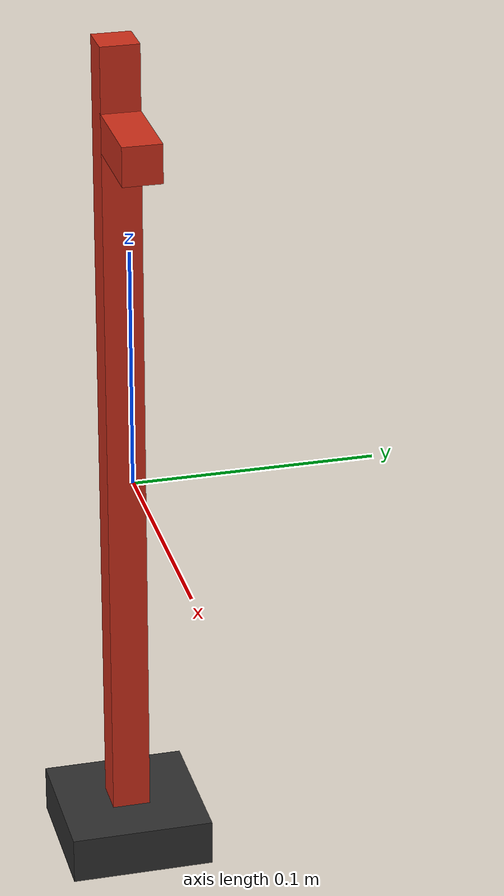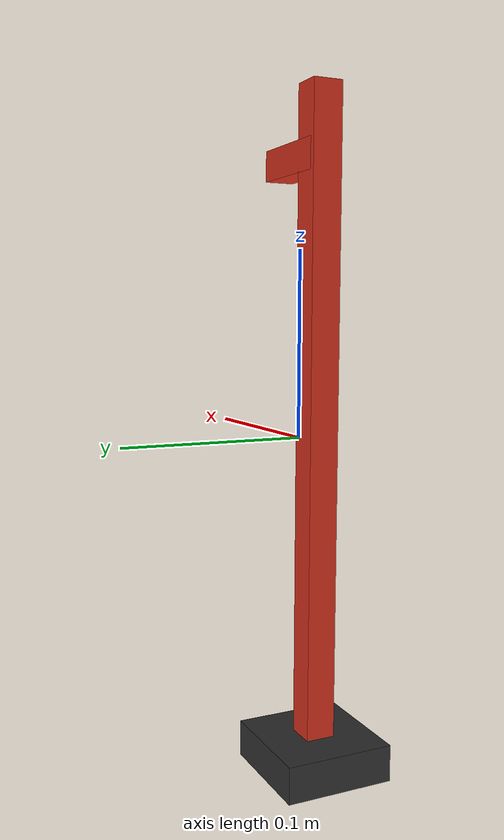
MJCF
<mujoco model="l1b_goal_arm_gate">
  <worldbody>
    <body>
      <body name="object">
        <geom name="upright_visual" type="box" pos="-0.020 0 0"
              size="0.008 0.008 0.180" contype="0" conaffinity="0"
              rgba="0.80 0.18 0.10 1" group="1"/>
        <geom name="bar_visual" type="box" pos="0 0 0.145"
              size="0.025 0.008 0.008" contype="0" conaffinity="0"
              rgba="0.80 0.18 0.10 1" group="1"/>
        <geom name="base_visual" type="box" pos="-0.020 0 -0.170"
              size="0.030 0.030 0.010" contype="0" conaffinity="0"
              rgba="0.18 0.18 0.18 1" group="1"/>
        <geom name="upright_collision" type="box" pos="-0.020 0 0"
              size="0.008 0.008 0.180" density="180"
              friction="0.65 0.2 0.05" solimp="0.999 0.999 0.0005"
              solref="0.0005 1"
              rgba="0.80 0.18 0.10 1" group="0"/>
        <geom name="bar_collision" type="box" pos="0 0 0.145"
              size="0.025 0.008 0.008" density="140"
              friction="0.65 0.2 0.05" solimp="0.999 0.999 0.0005"
              solref="0.0005 1"
              rgba="0.80 0.18 0.10 1" group="0"/>
        <geom name="base_collision" type="box" pos="-0.020 0 -0.170"
              size="0.030 0.030 0.010" density="2500"
              friction="0.40 0.2 0.05" solimp="0.999 0.999 0.0005"
              solref="0.0005 1"
              rgba="0.18 0.18 0.18 1" group="0"/>
      </body>
      <site rgba="0 0 0 0" size="0.005" pos="-0.020 0 -0.180" name="bottom_site"/>
      <site rgba="0 0 0 0" size="0.005" pos="-0.020 0 0.180" name="top_site"/>
      <site rgba="0 0 0 0" size="0.005" pos="0.025 0 0.145" name="horizontal_radius_site"/>
    </body>
  </worldbody>
</mujoco>
